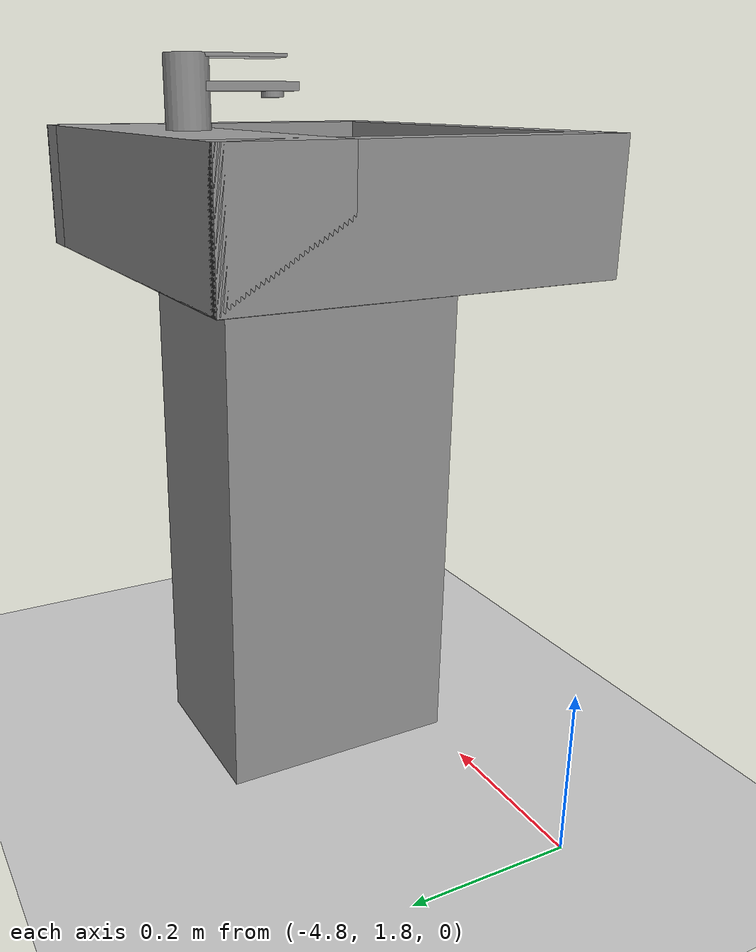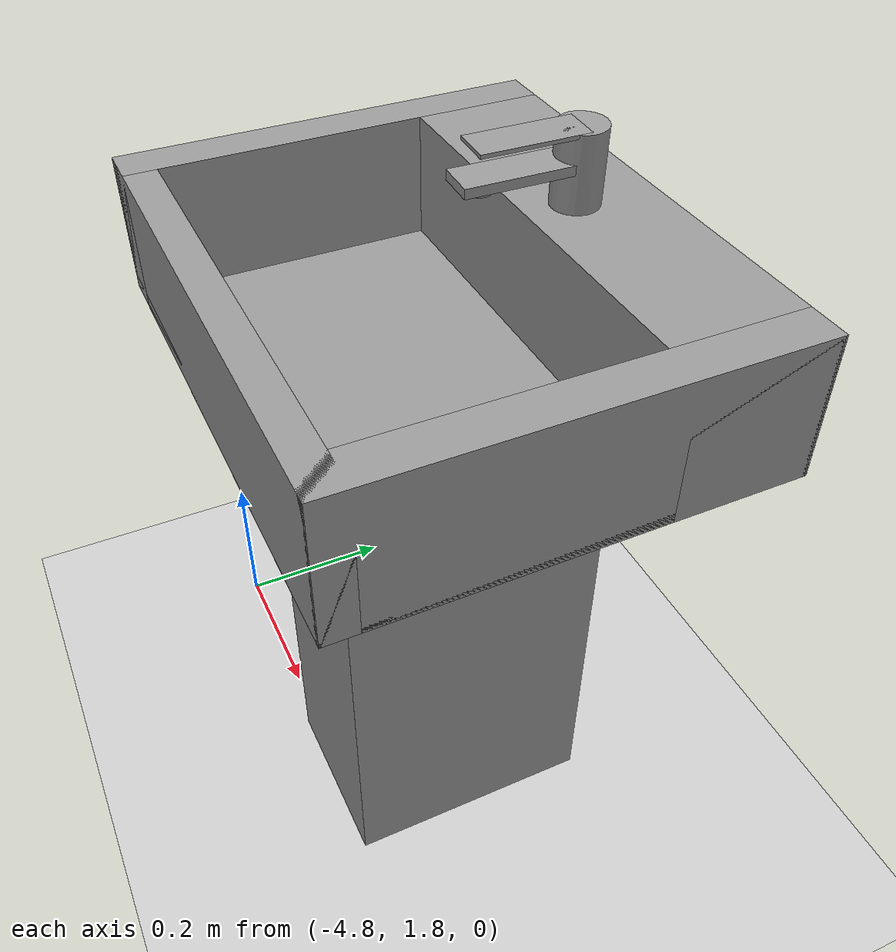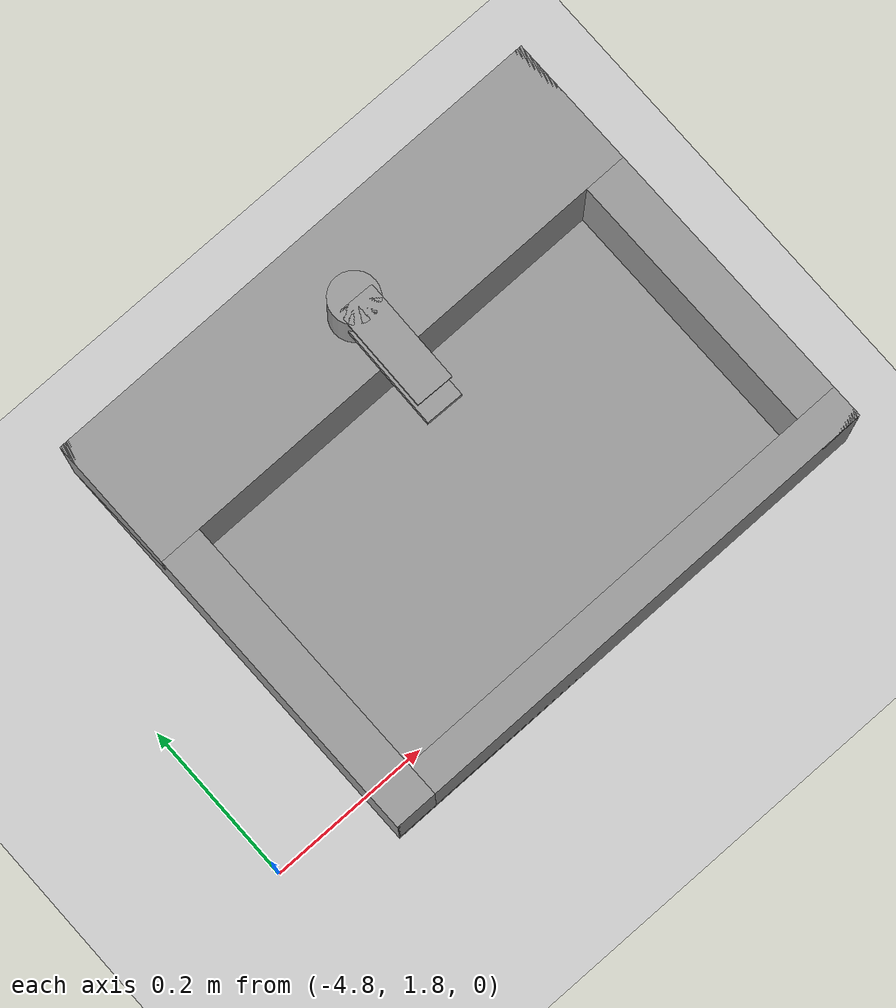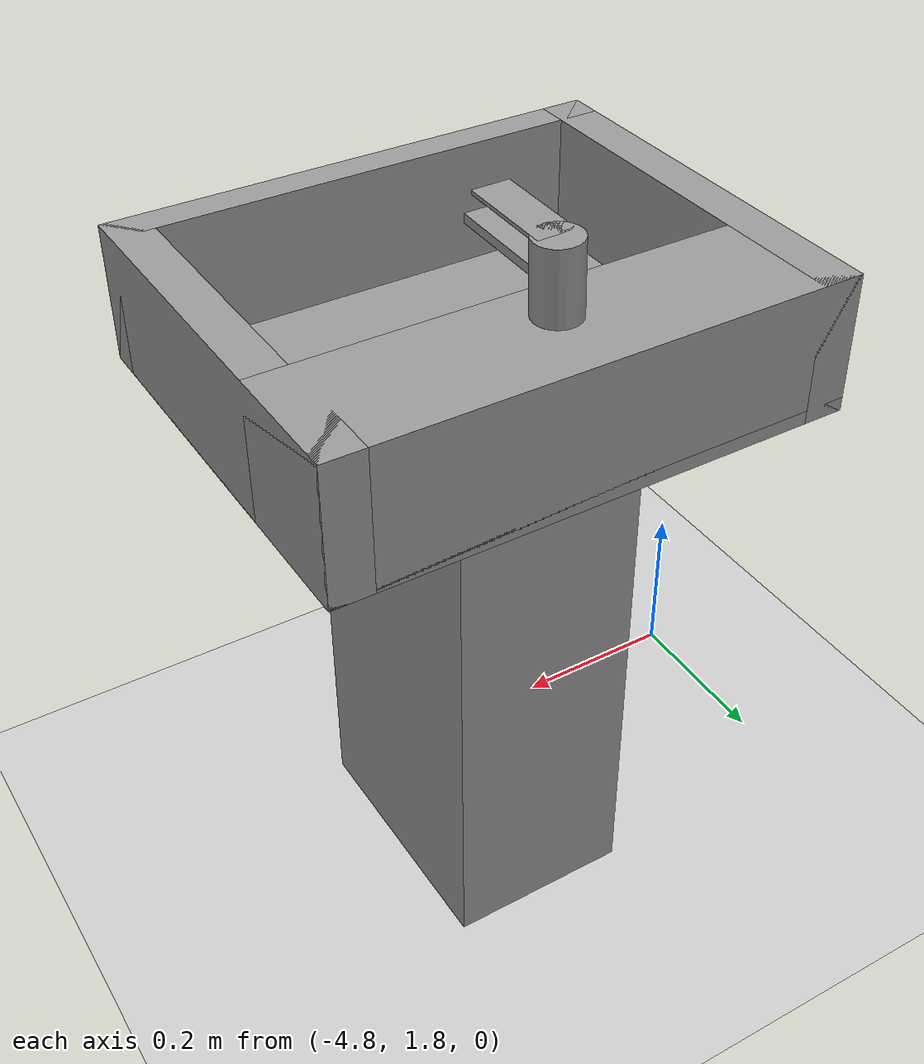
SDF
<sdf version="1.6">
 <world name="default">
  <model name="ground_plane">
   <static>1</static>
   <link name="link">
    <collision name="collision">
     <geometry><plane><normal>0 0 1</normal><size>100 100</size></plane></geometry>
     <surface><friction><ode><mu>100</mu><mu2>50</mu2></ode></friction></surface>
    </collision>
    <visual name="visual">
     <cast_shadows>0</cast_shadows>
     <geometry><plane><normal>0 0 1</normal><size>100 100</size></plane></geometry>
     <material>
      <script><uri>file://media/materials/scripts/gazebo.material</uri><name>Gazebo/Grey</name></script>
     </material>
    </visual>
   </link>
  </model>
  <model name="basin_2">
   <link name="link_0">
    <pose>0 0.00875 -0.31375 0 -0 0</pose>
    <visual name="ModelPreview_0::link_0::visual_4">
     <geometry><box><size>0.21 0.3 0.63</size></box></geometry>
     <material>
      <lighting>1</lighting>
      <script><uri>file://media/materials/scripts/gazebo.material</uri><name>Gazebo/Grey</name></script>
      <ambient>0.3 0.3 0.3 1</ambient>
      <diffuse>0.7 0.7 0.7 1</diffuse>
      <specular>0.01 0.01 0.01 1</specular>
      <emissive>0 0 0 1</emissive>
      <shader type="vertex"><normal_map>__default__</normal_map></shader>
     </material>
    </visual>
    <visual name="ModelPreview_0::link_0::visual_5">
     <geometry><box><size>0.21 0.3 0.63</size></box></geometry>
     <material>
      <lighting>1</lighting>
      <script><uri>file://media/materials/scripts/gazebo.material</uri><name>Gazebo/Grey</name></script>
      <ambient>0.3 0.3 0.3 1</ambient>
      <diffuse>0.7 0.7 0.7 1</diffuse>
      <specular>0.01 0.01 1 1</specular>
      <emissive>0 0 0 1</emissive>
      <shader type="vertex"><normal_map>__default__</normal_map></shader>
     </material>
    </visual>
    <visual name="visual">
     <geometry><box><size>0.21 0.3 0.63</size></box></geometry>
     <material>
      <lighting>1</lighting>
      <script><uri>file://media/materials/scripts/gazebo.material</uri><name>Gazebo/Grey</name></script>
      <ambient>0.3 0.3 0.3 1</ambient>
      <diffuse>0.7 0.7 0.7 1</diffuse>
      <specular>0.01 1 1 1</specular>
      <emissive>0 0 0 1</emissive>
      <shader type="vertex"><normal_map>__default__</normal_map></shader>
     </material>
    </visual>
    <collision name="collision">
     <geometry><box><size>0.21 0.3 0.63</size></box></geometry>
     <surface>
      <friction>
       <ode><mu>1</mu><mu2>1</mu2><fdir1>0 0 0</fdir1><slip1>0</slip1><slip2>0</slip2></ode>
       <torsional>
        <coefficient>1</coefficient>
        <patch_radius>0</patch_radius>
        <surface_radius>0</surface_radius>
        <use_patch_radius>1</use_patch_radius>
        <ode><slip>0</slip></ode>
       </torsional>
      </friction>
      <bounce><restitution_coefficient>0</restitution_coefficient><threshold>1e+06</threshold></bounce>
      <contact>
       <collide_without_contact>0</collide_without_contact>
       <collide_without_contact_bitmask>1</collide_without_contact_bitmask>
       <collide_bitmask>1</collide_bitmask>
       <ode>
        <soft_cfm>0</soft_cfm>
        <soft_erp>0.2</soft_erp>
        <kp>1e+13</kp>
        <kd>1</kd>
        <max_vel>0.01</max_vel>
        <min_depth>0</min_depth>
       </ode>
       <bullet>
        <split_impulse>1</split_impulse>
        <split_impulse_penetration_threshold>-0.01</split_impulse_penetration_threshold>
        <soft_cfm>0</soft_cfm>
        <soft_erp>0.2</soft_erp>
        <kp>1e+13</kp>
        <kd>1</kd>
       </bullet>
      </contact>
     </surface>
    </collision>
    <inertial>
     <inertia><ixx>1</ixx><ixy>0</ixy><ixz>0</ixz><iyy>1</iyy><iyz>0</iyz><izz>1</izz></inertia>
     <mass>1</mass>
    </inertial>
   </link>
   <link name="link_1">
    <pose>0 0.00875 0.00875 0 -0 0</pose>
    <visual name="visual">
     <geometry><box><size>0.56 0.46 0.015</size></box></geometry>
     <material>
      <lighting>1</lighting>
      <script><uri>file://media/materials/scripts/gazebo.material</uri><name>Gazebo/Grey</name></script>
      <ambient>0.3 0.3 0.3 1</ambient>
      <diffuse>0.7 0.7 0.7 1</diffuse>
      <specular>0.01 1 1 1</specular>
      <emissive>0 0 0 1</emissive>
      <shader type="vertex"><normal_map>__default__</normal_map></shader>
     </material>
    </visual>
    <collision name="collision">
     <geometry><box><size>0.56 0.46 0.015</size></box></geometry>
     <surface>
      <friction>
       <ode><mu>1</mu><mu2>1</mu2><fdir1>0 0 0</fdir1><slip1>0</slip1><slip2>0</slip2></ode>
       <torsional>
        <coefficient>1</coefficient>
        <patch_radius>0</patch_radius>
        <surface_radius>0</surface_radius>
        <use_patch_radius>1</use_patch_radius>
        <ode><slip>0</slip></ode>
       </torsional>
      </friction>
      <bounce><restitution_coefficient>0</restitution_coefficient><threshold>1e+06</threshold></bounce>
      <contact>
       <collide_without_contact>0</collide_without_contact>
       <collide_without_contact_bitmask>1</collide_without_contact_bitmask>
       <collide_bitmask>1</collide_bitmask>
       <ode>
        <soft_cfm>0</soft_cfm>
        <soft_erp>0.2</soft_erp>
        <kp>1e+13</kp>
        <kd>1</kd>
        <max_vel>0.01</max_vel>
        <min_depth>0</min_depth>
       </ode>
       <bullet>
        <split_impulse>1</split_impulse>
        <split_impulse_penetration_threshold>-0.01</split_impulse_penetration_threshold>
        <soft_cfm>0</soft_cfm>
        <soft_erp>0.2</soft_erp>
        <kp>1e+13</kp>
        <kd>1</kd>
       </bullet>
      </contact>
     </surface>
    </collision>
    <inertial>
     <inertia><ixx>1</ixx><ixy>0</ixy><ixz>0</ixz><iyy>1</iyy><iyz>0</iyz><izz>1</izz></inertia>
     <mass>1</mass>
    </inertial>
   </link>
   <link name="link_2">
    <pose>-0.2575 0.00875 0.07625 0 -0 0</pose>
    <visual name="visual">
     <geometry><box><size>0.045 0.46 0.15</size></box></geometry>
     <material>
      <lighting>1</lighting>
      <script><uri>file://media/materials/scripts/gazebo.material</uri><name>Gazebo/Grey</name></script>
      <ambient>0.3 0.3 0.3 1</ambient>
      <diffuse>0.7 0.7 0.7 1</diffuse>
      <specular>0.01 1 1 1</specular>
      <emissive>0 0 0 1</emissive>
      <shader type="vertex"><normal_map>__default__</normal_map></shader>
     </material>
    </visual>
    <collision name="collision">
     <geometry><box><size>0.045 0.46 0.15</size></box></geometry>
     <surface>
      <friction>
       <ode><mu>1</mu><mu2>1</mu2><fdir1>0 0 0</fdir1><slip1>0</slip1><slip2>0</slip2></ode>
       <torsional>
        <coefficient>1</coefficient>
        <patch_radius>0</patch_radius>
        <surface_radius>0</surface_radius>
        <use_patch_radius>1</use_patch_radius>
        <ode><slip>0</slip></ode>
       </torsional>
      </friction>
      <bounce><restitution_coefficient>0</restitution_coefficient><threshold>1e+06</threshold></bounce>
      <contact>
       <collide_without_contact>0</collide_without_contact>
       <collide_without_contact_bitmask>1</collide_without_contact_bitmask>
       <collide_bitmask>1</collide_bitmask>
       <ode>
        <soft_cfm>0</soft_cfm>
        <soft_erp>0.2</soft_erp>
        <kp>1e+13</kp>
        <kd>1</kd>
        <max_vel>0.01</max_vel>
        <min_depth>0</min_depth>
       </ode>
       <bullet>
        <split_impulse>1</split_impulse>
        <split_impulse_penetration_threshold>-0.01</split_impulse_penetration_threshold>
        <soft_cfm>0</soft_cfm>
        <soft_erp>0.2</soft_erp>
        <kp>1e+13</kp>
        <kd>1</kd>
       </bullet>
      </contact>
     </surface>
    </collision>
    <inertial>
     <inertia><ixx>1</ixx><ixy>0</ixy><ixz>0</ixz><iyy>1</iyy><iyz>0</iyz><izz>1</izz></inertia>
     <mass>1</mass>
    </inertial>
   </link>
   <link name="link_2_clone">
    <pose>0.2575 0.00875 0.07625 0 -0 0</pose>
    <visual name="visual">
     <geometry><box><size>0.045 0.46 0.15</size></box></geometry>
     <material>
      <lighting>1</lighting>
      <script><uri>file://media/materials/scripts/gazebo.material</uri><name>Gazebo/Grey</name></script>
      <ambient>0.3 0.3 0.3 1</ambient>
      <diffuse>0.7 0.7 0.7 1</diffuse>
      <specular>0.01 1 1 1</specular>
      <emissive>0 0 0 1</emissive>
      <shader type="vertex"><normal_map>__default__</normal_map></shader>
     </material>
    </visual>
    <collision name="collision">
     <geometry><box><size>0.045 0.46 0.15</size></box></geometry>
     <surface>
      <friction>
       <ode><mu>1</mu><mu2>1</mu2><fdir1>0 0 0</fdir1><slip1>0</slip1><slip2>0</slip2></ode>
       <torsional>
        <coefficient>1</coefficient>
        <patch_radius>0</patch_radius>
        <surface_radius>0</surface_radius>
        <use_patch_radius>1</use_patch_radius>
        <ode><slip>0</slip></ode>
       </torsional>
      </friction>
      <bounce><restitution_coefficient>0</restitution_coefficient><threshold>1e+06</threshold></bounce>
      <contact>
       <collide_without_contact>0</collide_without_contact>
       <collide_without_contact_bitmask>1</collide_without_contact_bitmask>
       <collide_bitmask>1</collide_bitmask>
       <ode>
        <soft_cfm>0</soft_cfm>
        <soft_erp>0.2</soft_erp>
        <kp>1e+13</kp>
        <kd>1</kd>
        <max_vel>0.01</max_vel>
        <min_depth>0</min_depth>
       </ode>
       <bullet>
        <split_impulse>1</split_impulse>
        <split_impulse_penetration_threshold>-0.01</split_impulse_penetration_threshold>
        <soft_cfm>0</soft_cfm>
        <soft_erp>0.2</soft_erp>
        <kp>1e+13</kp>
        <kd>1</kd>
       </bullet>
      </contact>
     </surface>
    </collision>
    <inertial>
     <inertia><ixx>1</ixx><ixy>0</ixy><ixz>0</ixz><iyy>1</iyy><iyz>0</iyz><izz>1</izz></inertia>
     <mass>1</mass>
    </inertial>
   </link>
   <link name="link_2_clone_0">
    <pose>0 0.16875 0.07625 0 -0 0</pose>
    <visual name="visual">
     <geometry><box><size>0.56 0.14 0.15</size></box></geometry>
     <material>
      <lighting>1</lighting>
      <script><uri>file://media/materials/scripts/gazebo.material</uri><name>Gazebo/Grey</name></script>
      <ambient>0.3 0.3 0.3 1</ambient>
      <diffuse>0.7 0.7 0.7 1</diffuse>
      <specular>0.01 1 1 1</specular>
      <emissive>0 0 0 1</emissive>
      <shader type="vertex"><normal_map>__default__</normal_map></shader>
     </material>
    </visual>
    <collision name="collision">
     <geometry><box><size>0.56 0.14 0.15</size></box></geometry>
     <surface>
      <friction>
       <ode><mu>1</mu><mu2>1</mu2><fdir1>0 0 0</fdir1><slip1>0</slip1><slip2>0</slip2></ode>
       <torsional>
        <coefficient>1</coefficient>
        <patch_radius>0</patch_radius>
        <surface_radius>0</surface_radius>
        <use_patch_radius>1</use_patch_radius>
        <ode><slip>0</slip></ode>
       </torsional>
      </friction>
      <bounce><restitution_coefficient>0</restitution_coefficient><threshold>1e+06</threshold></bounce>
      <contact>
       <collide_without_contact>0</collide_without_contact>
       <collide_without_contact_bitmask>1</collide_without_contact_bitmask>
       <collide_bitmask>1</collide_bitmask>
       <ode>
        <soft_cfm>0</soft_cfm>
        <soft_erp>0.2</soft_erp>
        <kp>1e+13</kp>
        <kd>1</kd>
        <max_vel>0.01</max_vel>
        <min_depth>0</min_depth>
       </ode>
       <bullet>
        <split_impulse>1</split_impulse>
        <split_impulse_penetration_threshold>-0.01</split_impulse_penetration_threshold>
        <soft_cfm>0</soft_cfm>
        <soft_erp>0.2</soft_erp>
        <kp>1e+13</kp>
        <kd>1</kd>
       </bullet>
      </contact>
     </surface>
    </collision>
    <inertial>
     <inertia><ixx>1</ixx><ixy>0</ixy><ixz>0</ixz><iyy>1</iyy><iyz>0</iyz><izz>1</izz></inertia>
     <mass>1</mass>
    </inertial>
   </link>
   <link name="link_2_clone_0_clone">
    <pose>0 -0.20375 0.07625 0 -0 0</pose>
    <visual name="visual">
     <geometry><box><size>0.56 0.035 0.15</size></box></geometry>
     <material>
      <lighting>1</lighting>
      <script><uri>file://media/materials/scripts/gazebo.material</uri><name>Gazebo/Grey</name></script>
      <ambient>0.3 0.3 0.3 1</ambient>
      <diffuse>0.7 0.7 0.7 1</diffuse>
      <specular>0.01 1 1 1</specular>
      <emissive>0 0 0 1</emissive>
      <shader type="vertex"><normal_map>__default__</normal_map></shader>
     </material>
    </visual>
    <collision name="collision">
     <geometry><box><size>0.56 0.035 0.15</size></box></geometry>
     <surface>
      <friction>
       <ode><mu>1</mu><mu2>1</mu2><fdir1>0 0 0</fdir1><slip1>0</slip1><slip2>0</slip2></ode>
       <torsional>
        <coefficient>1</coefficient>
        <patch_radius>0</patch_radius>
        <surface_radius>0</surface_radius>
        <use_patch_radius>1</use_patch_radius>
        <ode><slip>0</slip></ode>
       </torsional>
      </friction>
      <bounce><restitution_coefficient>0</restitution_coefficient><threshold>1e+06</threshold></bounce>
      <contact>
       <collide_without_contact>0</collide_without_contact>
       <collide_without_contact_bitmask>1</collide_without_contact_bitmask>
       <collide_bitmask>1</collide_bitmask>
       <ode>
        <soft_cfm>0</soft_cfm>
        <soft_erp>0.2</soft_erp>
        <kp>1e+13</kp>
        <kd>1</kd>
        <max_vel>0.01</max_vel>
        <min_depth>0</min_depth>
       </ode>
       <bullet>
        <split_impulse>1</split_impulse>
        <split_impulse_penetration_threshold>-0.01</split_impulse_penetration_threshold>
        <soft_cfm>0</soft_cfm>
        <soft_erp>0.2</soft_erp>
        <kp>1e+13</kp>
        <kd>1</kd>
       </bullet>
      </contact>
     </surface>
    </collision>
    <inertial>
     <inertia><ixx>1</ixx><ixy>0</ixy><ixz>0</ixz><iyy>1</iyy><iyz>0</iyz><izz>1</izz></inertia>
     <mass>1</mass>
    </inertial>
   </link>
   <model name="faucet">
    <link name="link_12">
     <pose>0.036877 0 -0.013812 0 -0 0</pose>
     <visual name="visual">
      <geometry><cylinder><radius>0.025</radius><length>0.089</length></cylinder></geometry>
      <material>
       <lighting>1</lighting>
       <script><uri>file://media/materials/scripts/gazebo.material</uri><name>Gazebo/Grey</name></script>
       <ambient>0.3 0.3 0.3 1</ambient>
       <diffuse>0.7 0.7 0.7 1</diffuse>
       <specular>0.01 0.01 0.01 1</specular>
       <emissive>0 0 0 1</emissive>
       <shader type="vertex"><normal_map>__default__</normal_map></shader>
      </material>
     </visual>
     <collision name="collision">
      <geometry><cylinder><radius>0.025</radius><length>0.089</length></cylinder></geometry>
      <surface>
       <friction>
        <ode><mu>1</mu><mu2>1</mu2><fdir1>0 0 0</fdir1><slip1>0</slip1><slip2>0</slip2></ode>
        <torsional>
         <coefficient>1</coefficient>
         <patch_radius>0</patch_radius>
         <surface_radius>0</surface_radius>
         <use_patch_radius>1</use_patch_radius>
         <ode><slip>0</slip></ode>
        </torsional>
       </friction>
       <bounce><restitution_coefficient>0</restitution_coefficient><threshold>1e+06</threshold></bounce>
       <contact>
        <collide_without_contact>0</collide_without_contact>
        <collide_without_contact_bitmask>1</collide_without_contact_bitmask>
        <collide_bitmask>1</collide_bitmask>
        <ode>
         <soft_cfm>0</soft_cfm>
         <soft_erp>0.2</soft_erp>
         <kp>1e+13</kp>
         <kd>1</kd>
         <max_vel>0.01</max_vel>
         <min_depth>0</min_depth>
        </ode>
        <bullet>
         <split_impulse>1</split_impulse>
         <split_impulse_penetration_threshold>-0.01</split_impulse_penetration_threshold>
         <soft_cfm>0</soft_cfm>
         <soft_erp>0.2</soft_erp>
         <kp>1e+13</kp>
         <kd>1</kd>
        </bullet>
       </contact>
      </surface>
     </collision>
     <inertial>
      <inertia><ixx>1</ixx><ixy>0</ixy><ixz>0</ixz><iyy>1</iyy><iyz>0</iyz><izz>1</izz></inertia>
      <mass>1</mass>
     </inertial>
    </link>
    <link name="link_13">
     <pose>-0.019042 0 0.028688 0 -0 0</pose>
     <visual name="visual">
      <geometry><box><size>0.11 0.04 0.004</size></box></geometry>
      <material>
       <lighting>1</lighting>
       <script><uri>file://media/materials/scripts/gazebo.material</uri><name>Gazebo/Grey</name></script>
       <ambient>0.3 0.3 0.3 1</ambient>
       <diffuse>0.7 0.7 0.7 1</diffuse>
       <specular>0.01 0.01 0.01 1</specular>
       <emissive>0 0 0 1</emissive>
       <shader type="vertex"><normal_map>__default__</normal_map></shader>
      </material>
     </visual>
     <collision name="collision">
      <geometry><box><size>0.11 0.04 0.004</size></box></geometry>
      <surface>
       <friction>
        <ode><mu>1</mu><mu2>1</mu2><fdir1>0 0 0</fdir1><slip1>0</slip1><slip2>0</slip2></ode>
        <torsional>
         <coefficient>1</coefficient>
         <patch_radius>0</patch_radius>
         <surface_radius>0</surface_radius>
         <use_patch_radius>1</use_patch_radius>
         <ode><slip>0</slip></ode>
        </torsional>
       </friction>
       <bounce><restitution_coefficient>0</restitution_coefficient><threshold>1e+06</threshold></bounce>
       <contact>
        <collide_without_contact>0</collide_without_contact>
        <collide_without_contact_bitmask>1</collide_without_contact_bitmask>
        <collide_bitmask>1</collide_bitmask>
        <ode>
         <soft_cfm>0</soft_cfm>
         <soft_erp>0.2</soft_erp>
         <kp>1e+13</kp>
         <kd>1</kd>
         <max_vel>0.01</max_vel>
         <min_depth>0</min_depth>
        </ode>
        <bullet>
         <split_impulse>1</split_impulse>
         <split_impulse_penetration_threshold>-0.01</split_impulse_penetration_threshold>
         <soft_cfm>0</soft_cfm>
         <soft_erp>0.2</soft_erp>
         <kp>1e+13</kp>
         <kd>1</kd>
        </bullet>
       </contact>
      </surface>
     </collision>
     <inertial>
      <inertia><ixx>1</ixx><ixy>0</ixy><ixz>0</ixz><iyy>1</iyy><iyz>0</iyz><izz>1</izz></inertia>
      <mass>1</mass>
     </inertial>
    </link>
    <link name="link_14">
     <pose>-0.028095 0 -0.003313 0 -0 0</pose>
     <visual name="visual">
      <geometry><box><size>0.12 0.04 0.01</size></box></geometry>
      <material>
       <lighting>1</lighting>
       <script><uri>file://media/materials/scripts/gazebo.material</uri><name>Gazebo/Grey</name></script>
       <ambient>0.3 0.3 0.3 1</ambient>
       <diffuse>0.7 0.7 0.7 1</diffuse>
       <specular>0.01 0.01 0.01 1</specular>
       <emissive>0 0 0 1</emissive>
       <shader type="vertex"><normal_map>__default__</normal_map></shader>
      </material>
     </visual>
     <collision name="collision">
      <geometry><box><size>0.12 0.04 0.01</size></box></geometry>
      <surface>
       <friction>
        <ode><mu>1</mu><mu2>1</mu2><fdir1>0 0 0</fdir1><slip1>0</slip1><slip2>0</slip2></ode>
        <torsional>
         <coefficient>1</coefficient>
         <patch_radius>0</patch_radius>
         <surface_radius>0</surface_radius>
         <use_patch_radius>1</use_patch_radius>
         <ode><slip>0</slip></ode>
        </torsional>
       </friction>
       <bounce><restitution_coefficient>0</restitution_coefficient><threshold>1e+06</threshold></bounce>
       <contact>
        <collide_without_contact>0</collide_without_contact>
        <collide_without_contact_bitmask>1</collide_without_contact_bitmask>
        <collide_bitmask>1</collide_bitmask>
        <ode>
         <soft_cfm>0</soft_cfm>
         <soft_erp>0.2</soft_erp>
         <kp>1e+13</kp>
         <kd>1</kd>
         <max_vel>0.01</max_vel>
         <min_depth>0</min_depth>
        </ode>
        <bullet>
         <split_impulse>1</split_impulse>
         <split_impulse_penetration_threshold>-0.01</split_impulse_penetration_threshold>
         <soft_cfm>0</soft_cfm>
         <soft_erp>0.2</soft_erp>
         <kp>1e+13</kp>
         <kd>1</kd>
        </bullet>
       </contact>
      </surface>
     </collision>
     <inertial>
      <inertia><ixx>1</ixx><ixy>0</ixy><ixz>0</ixz><iyy>1</iyy><iyz>0</iyz><izz>1</izz></inertia>
      <mass>1</mass>
     </inertial>
    </link>
    <link name="link_16">
     <pose>-0.064267 0 -0.011562 0 -0 0</pose>
     <visual name="visual">
      <geometry><cylinder><radius>0.0125</radius><length>0.0065</length></cylinder></geometry>
      <material>
       <lighting>1</lighting>
       <script><uri>file://media/materials/scripts/gazebo.material</uri><name>Gazebo/Grey</name></script>
       <ambient>0.3 0.3 0.3 1</ambient>
       <diffuse>0.7 0.7 0.7 1</diffuse>
       <specular>0.01 0.01 0.01 1</specular>
       <emissive>0 0 0 1</emissive>
       <shader type="vertex"><normal_map>__default__</normal_map></shader>
      </material>
     </visual>
     <collision name="collision">
      <geometry><cylinder><radius>0.0125</radius><length>0.0065</length></cylinder></geometry>
      <surface>
       <friction>
        <ode><mu>1</mu><mu2>1</mu2><fdir1>0 0 0</fdir1><slip1>0</slip1><slip2>0</slip2></ode>
        <torsional>
         <coefficient>1</coefficient>
         <patch_radius>0</patch_radius>
         <surface_radius>0</surface_radius>
         <use_patch_radius>1</use_patch_radius>
         <ode><slip>0</slip></ode>
        </torsional>
       </friction>
       <bounce><restitution_coefficient>0</restitution_coefficient><threshold>1e+06</threshold></bounce>
       <contact>
        <collide_without_contact>0</collide_without_contact>
        <collide_without_contact_bitmask>1</collide_without_contact_bitmask>
        <collide_bitmask>1</collide_bitmask>
        <ode>
         <soft_cfm>0</soft_cfm>
         <soft_erp>0.2</soft_erp>
         <kp>1e+13</kp>
         <kd>1</kd>
         <max_vel>0.01</max_vel>
         <min_depth>0</min_depth>
        </ode>
        <bullet>
         <split_impulse>1</split_impulse>
         <split_impulse_penetration_threshold>-0.01</split_impulse_penetration_threshold>
         <soft_cfm>0</soft_cfm>
         <soft_erp>0.2</soft_erp>
         <kp>1e+13</kp>
         <kd>1</kd>
        </bullet>
       </contact>
      </surface>
     </collision>
     <inertial>
      <inertia><ixx>1</ixx><ixy>0</ixy><ixz>0</ixz><iyy>1</iyy><iyz>0</iyz><izz>1</izz></inertia>
      <mass>1</mass>
     </inertial>
    </link>
    <joint name="link_12_JOINT_42" type="fixed">
     <parent>link_12</parent>
     <child>link_13</child>
     <physics>
      <ode><limit><cfm>0</cfm><erp>0.2</erp></limit><suspension><cfm>0</cfm><erp>0.2</erp></suspension></ode>
     </physics>
    </joint>
    <joint name="link_12_JOINT_43" type="fixed">
     <parent>link_12</parent>
     <child>link_14</child>
     <physics>
      <ode><limit><cfm>0</cfm><erp>0.2</erp></limit><suspension><cfm>0</cfm><erp>0.2</erp></suspension></ode>
     </physics>
    </joint>
    <joint name="link_12_JOINT_44" type="fixed">
     <parent>link_12</parent>
     <child>link_13</child>
     <physics>
      <ode><limit><cfm>0</cfm><erp>0.2</erp></limit><suspension><cfm>0</cfm><erp>0.2</erp></suspension></ode>
     </physics>
    </joint>
    <joint name="link_14_JOINT_45" type="fixed">
     <parent>link_14</parent>
     <child>link_16</child>
     <physics>
      <ode><limit><cfm>0</cfm><erp>0.2</erp></limit><suspension><cfm>0</cfm><erp>0.2</erp></suspension></ode>
     </physics>
    </joint>
    <static>0</static>
    <pose>-9e-05 0.115152 0.199689 0.024131 0 1.55117</pose>
   </model>
   <joint name="link_0_JOINT_0" type="fixed">
    <parent>link_0</parent>
    <child>link_1</child>
    <physics>
     <ode><limit><cfm>0</cfm><erp>0.2</erp></limit><suspension><cfm>0</cfm><erp>0.2</erp></suspension></ode>
    </physics>
   </joint>
   <joint name="link_1_JOINT_1" type="fixed">
    <parent>link_1</parent>
    <child>link_2</child>
    <physics>
     <ode><limit><cfm>0</cfm><erp>0.2</erp></limit><suspension><cfm>0</cfm><erp>0.2</erp></suspension></ode>
    </physics>
   </joint>
   <joint name="link_1_JOINT_2" type="fixed">
    <parent>link_1</parent>
    <child>link_2_clone</child>
    <physics>
     <ode><limit><cfm>0</cfm><erp>0.2</erp></limit><suspension><cfm>0</cfm><erp>0.2</erp></suspension></ode>
    </physics>
   </joint>
   <joint name="link_1_JOINT_3" type="fixed">
    <parent>link_1</parent>
    <child>link_2_clone_0</child>
    <physics>
     <ode><limit><cfm>0</cfm><erp>0.2</erp></limit><suspension><cfm>0</cfm><erp>0.2</erp></suspension></ode>
    </physics>
   </joint>
   <joint name="link_1_JOINT_4" type="fixed">
    <parent>link_1</parent>
    <child>link_2_clone_0_clone</child>
    <physics>
     <ode><limit><cfm>0</cfm><erp>0.2</erp></limit><suspension><cfm>0</cfm><erp>0.2</erp></suspension></ode>
    </physics>
   </joint>
   <joint name="link_2_clone_0_JOINT_1" type="fixed">
    <parent>link_2_clone_0</parent>
    <child>faucet::link_12</child>
    <physics>
     <ode><limit><cfm>0</cfm><erp>0.2</erp></limit><suspension><cfm>0</cfm><erp>0.2</erp></suspension></ode>
    </physics>
   </joint>
   <static>0</static>
   <pose>-4.42065 1.92873 0.628745 1.2e-05 2e-06 0.005267</pose>
  </model>
 </world>
</sdf>
